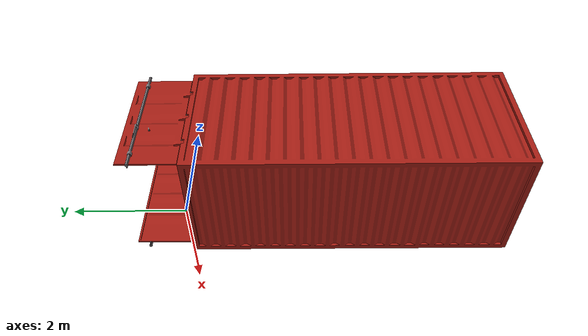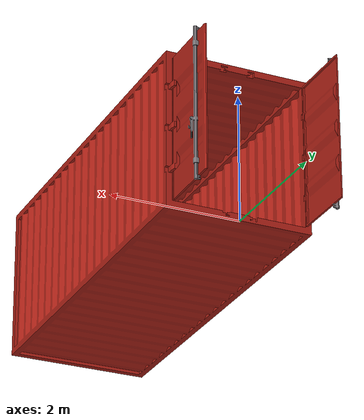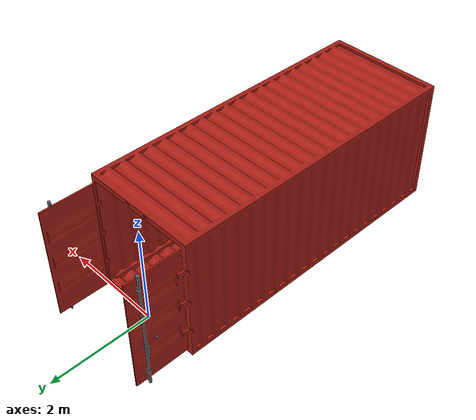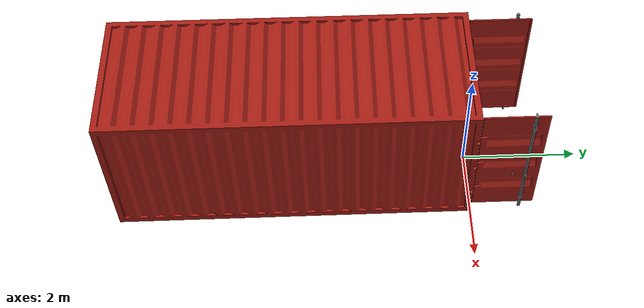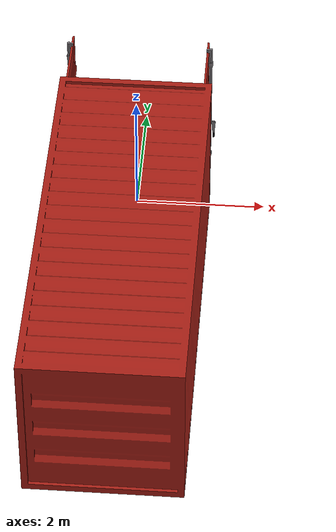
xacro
<?xml version="1.0" ?>
<robot name="red_container" xmlns:xacro="http://www.ros.org/wiki/xacro" >

<xacro:include filename="$(find forklift_simulator)/urdf/red_container/inertia.xacro" />
<xacro:include filename="$(find forklift_simulator)/urdf/red_container/base.xacro" />
<xacro:include filename="$(find forklift_simulator)/urdf/red_container/left_door.xacro" />
<xacro:include filename="$(find forklift_simulator)/urdf/red_container/right_door.xacro" />

<xacro:left_door />
<xacro:right_door />

</robot>

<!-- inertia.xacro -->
<robot xmlns:xacro="http://www.ros.org/wiki/xacro">

    <xacro:macro  name="cylinder_inertia" params="mass r l">
      <inertia  ixx="${mass*(3*r*r+l*l)/12}" ixy = "0" ixz = "0"
                iyy="${mass*(3*r*r+l*l)/12}" iyz = "0"
                izz="${mass*(r*r)/2}" />
    </xacro:macro >

    <xacro:macro name="box_inertia" params="mass x y z">
      <inertia  ixx="${mass*(y*y+z*z)/12}" ixy = "0" ixz = "0"
                iyy="${mass*(x*x+z*z)/12}" iyz = "0"
                izz="${mass*(x*x+y*y)/12}"/>
    </xacro:macro>

    <xacro:macro name="sphere_inertia" params="mass r">
      <inertia
          ixx="${2*mass*r*r/5}" ixy = "0" ixz = "0"
          iyy="${2*mass*r*r/5}" iyz = "0"
          izz="${2*mass*r*r/5}"/>
    </xacro:macro>

</robot>

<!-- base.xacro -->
<robot name="red_container" xmlns:xacro="http://www.ros.org/wiki/xacro">

  <link name="base_footprint"/>

  <link name="base_link">
   <inertial>
    <origin xyz="0 -3.0 1.3" rpy="0 0 0"/>
     <xacro:box_inertia mass="20" x="2.3" y="6.0" z="2.6"/>
    <mass value= "20"/>
    </inertial>

    <collision>
      <origin rpy="0 0 0" xyz="0 0 0"/>
      <geometry>
        <mesh
          filename="$(find forklift_simulator)/urdf/red_container/meshes/red_container_box.dae" />
      </geometry>
    </collision>
    <visual>
      <origin rpy="0 0 0" xyz="0 0 0"/>
      <geometry>
        <mesh
        filename="$(find forklift_simulator)/urdf/red_container/meshes/red_container_box.dae" />
      </geometry>
    </visual>
  </link>

  <joint name="base_joint" type="fixed">
    <parent link="base_footprint" />
    <child link="base_link" />
    <origin xyz="0.0 0 0.010" rpy="0 0 0" />
    <axis xyz="0 0 1" />
  </joint>

</robot>

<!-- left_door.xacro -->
<robot name="red_container" xmlns:xacro="http://www.ros.org/wiki/xacro">

<xacro:macro name="left_door">

  <link name="left_door_container_link">
    <inertial>
    <origin xyz="0 0 0.1125" rpy="0 0 0"/>
    <xacro:cylinder_inertia mass="1" r="0.05" l="0.225" />
    <mass value= "1"/>
    </inertial>

    <collision >
    <origin xyz="0 0 0" rpy="0 0 0"/>
    <geometry>
        <mesh filename="$(find forklift_simulator)/urdf/red_container/meshes/red_container_left_door.dae" />
    </geometry>
    </collision>

    <visual >
    <origin xyz="0 0 0" rpy="0 0 0"/>
    <geometry>
        <mesh filename="$(find forklift_simulator)/urdf/red_container/meshes/red_container_left_door.dae" />
    </geometry>
    </visual>
  </link>

  <joint name="left_door_container_joint" type="revolute">
    <parent link="base_link" />
    <child link="left_door_container_link" />
    <origin xyz="1.1 -0.02 0" rpy="0 0 0" />
    <axis xyz="0 0 1" />
    <limit lower="-1.57" upper="1.57" effort="30" velocity="0.3"/>
     <dynamics damping="1" friction="1"/>
  </joint>

  <transmission name="trans_left_door">
    <type>transmission_interface/SimpleTransmission</type>
    <joint name="left_door_container_joint">
      <hardwareInterface>hardware_interface/EffortJointInterface</hardwareInterface>
    </joint>
    <actuator name="motor_trans_left_door">
      <hardwareInterface>hardware_interface/EffortJointInterface</hardwareInterface>
      <mechanicalReduction>1</mechanicalReduction>
    </actuator>
  </transmission>

 </xacro:macro>

</robot>

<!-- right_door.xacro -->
<robot name="red_container" xmlns:xacro="http://www.ros.org/wiki/xacro">

<xacro:macro name="right_door">

  <link name="right_door_container_link">
    <inertial>
    <origin xyz="0 0 0.1125" rpy="0 0 0"/>
    <xacro:cylinder_inertia mass="1" r="0.05" l="0.225" />
    <mass value= "1"/>
    </inertial>

    <collision >
    <origin xyz="0 0 0" rpy="0 0 0"/>
    <geometry>
        <mesh filename="$(find forklift_simulator)/urdf/red_container/meshes/red_container_right_door.dae" />
    </geometry>
    </collision>

    <visual >
    <origin xyz="0 0 0" rpy="0 0 0"/>
    <geometry>
        <mesh filename="$(find forklift_simulator)/urdf/red_container/meshes/red_container_right_door.dae" />
    </geometry>
    </visual>
  </link>

  <joint name="right_door_container_joint" type="revolute">
    <parent link="base_link" />
    <child link="right_door_container_link" />
    <origin xyz="-1.1 -0.02 0" rpy="0 0 0" />
    <axis xyz="0 0 1" />
    <limit lower="-1.57" upper="1.57" effort="30" velocity="0.3"/>
     <dynamics damping="1" friction="1"/>
  </joint>

  <transmission name="trans_right_door">
    <type>transmission_interface/SimpleTransmission</type>
    <joint name="right_door_container_joint">
      <hardwareInterface>hardware_interface/EffortJointInterface</hardwareInterface>
    </joint>
    <actuator name="motor_trans_right_door">
      <hardwareInterface>hardware_interface/EffortJointInterface</hardwareInterface>
      <mechanicalReduction>1</mechanicalReduction>
    </actuator>
  </transmission>

    <gazebo>
    <plugin name="gazebo_ros_control" filename="libgazebo_ros_control.so">
      <robotNamespace>/red_container</robotNamespace>
      <robotSimType>gazebo_ros_control/DefaultRobotHWSim</robotSimType>
    </plugin>
  </gazebo>

 </xacro:macro>

</robot>
